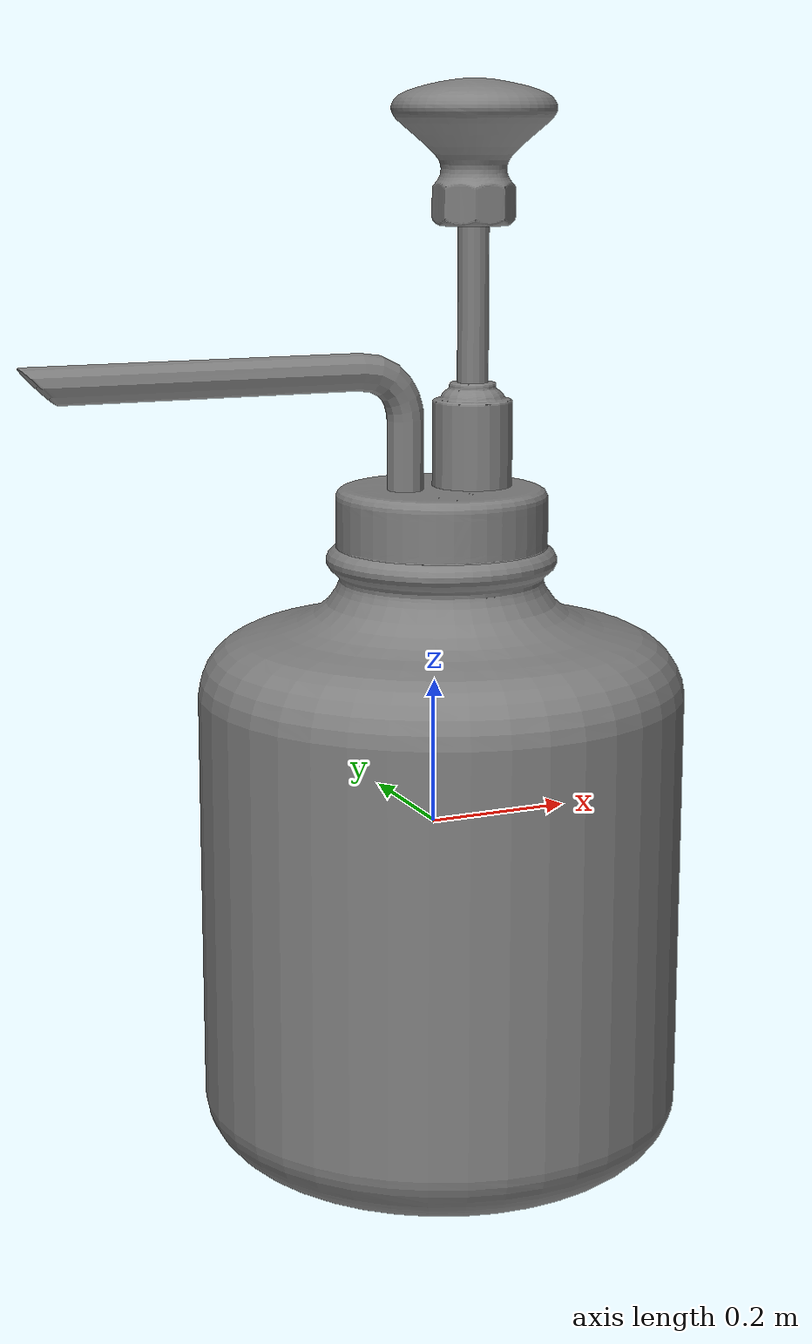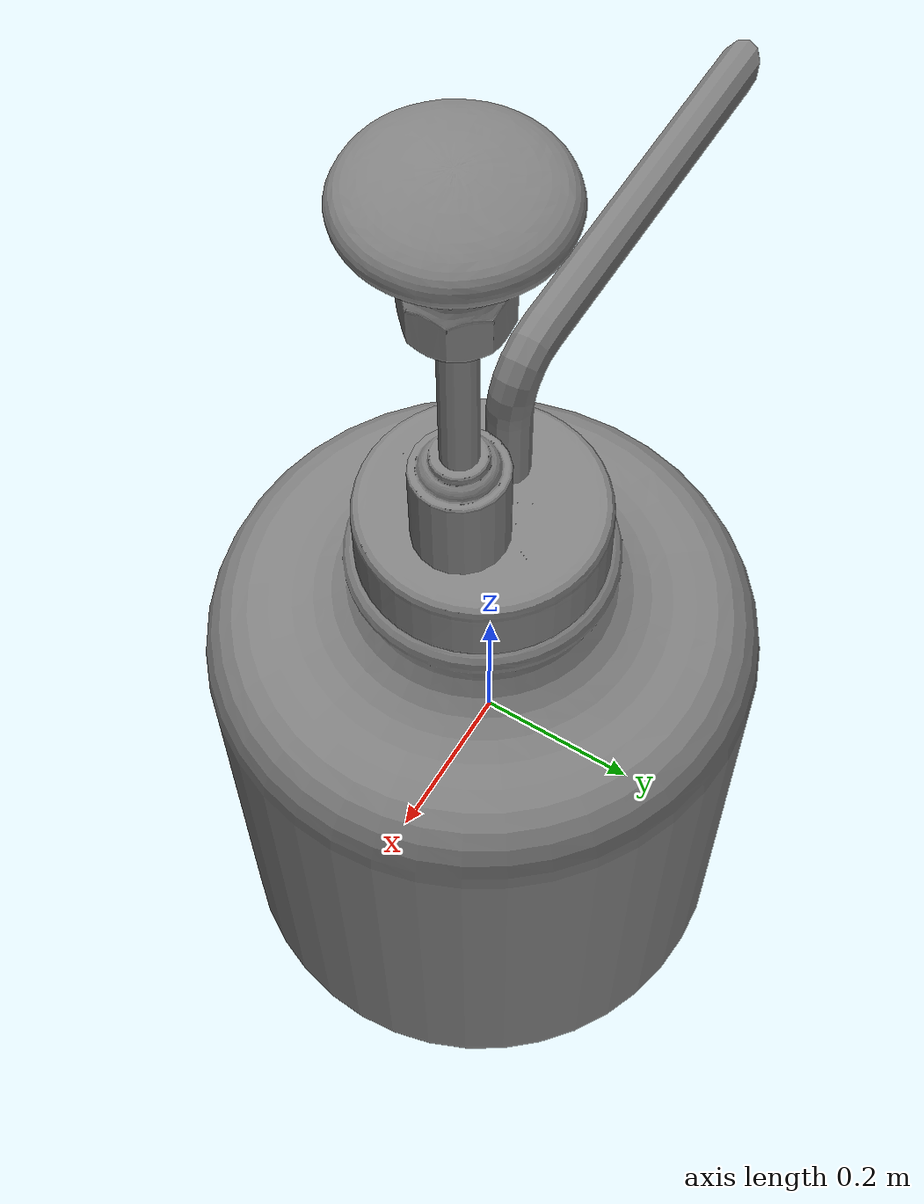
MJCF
<?xml version='1.0' encoding='UTF-8'?>
<mujoco model="partnet_8c726f9c-876e-4583-89ae-4255711b14f0">
  <compiler angle="radian"/>
  <asset>
    <mesh name="original_2" content_type="model/obj" file="textured_objs/original_2.obj"/>
    <mesh name="original_4" content_type="model/obj" file="textured_objs/original_4.obj"/>
    <mesh name="original_6" content_type="model/obj" file="textured_objs/original_6.obj"/>
    <mesh name="original_3" content_type="model/obj" file="textured_objs/original_3.obj"/>
    <mesh name="original_11" content_type="model/obj" file="textured_objs/original_11.obj"/>
    <mesh name="original_9" content_type="model/obj" file="textured_objs/original_9.obj"/>
    <mesh name="original_7" content_type="model/obj" file="textured_objs/original_7.obj"/>
    <mesh name="original_10" content_type="model/obj" file="textured_objs/original_10.obj"/>
  </asset>
  <worldbody>
    <body name="base">
      <body name="link_2" quat="0.5 0.5 -0.5 -0.5">
        <geom type="mesh" mesh="original_9"/>
        <geom type="mesh" mesh="original_7"/>
        <geom type="mesh" mesh="original_10"/>
        <body name="link_1_helper" pos="0.00574696 0 -0.00772598">
          <inertial pos="0 0 0" mass="1e-06" diaginertia="1e-10 1e-10 1e-10"/>
          <joint name="joint_4" pos="0 0 0" axis="0 1 0" type="slide" range="0 0.02"/>
          <body name="link_1">
            <joint name="joint_1" pos="0 0 0" axis="0 -1 0"/>
            <geom pos="-0.00574696 0 0.00772598" quat="1 0 0 0" type="mesh" mesh="original_6"/>
            <geom pos="-0.00574696 0 0.00772598" quat="1 0 0 0" type="mesh" mesh="original_3"/>
            <geom pos="-0.00574696 0 0.00772598" quat="1 0 0 0" type="mesh" mesh="original_11"/>
            <body name="link_0_helper" pos="-0.000536394 0 -0.0452744">
              <inertial pos="0 0 0" mass="1e-06" diaginertia="1e-10 1e-10 1e-10"/>
              <joint name="joint_3" pos="0 0 0" axis="0 -1 0" type="slide" range="0 0.2"/>
              <body name="link_0">
                <joint name="joint_0" pos="0 0 0" axis="0 1 0"/>
                <geom pos="-0.00521057 0 0.0530004" quat="1 0 0 0" type="mesh" mesh="original_2"/>
                <geom pos="-0.00521057 0 0.0530004" quat="1 0 0 0" type="mesh" mesh="original_4"/>
              </body>
            </body>
          </body>
        </body>
      </body>
    </body>
  </worldbody>
</mujoco>
